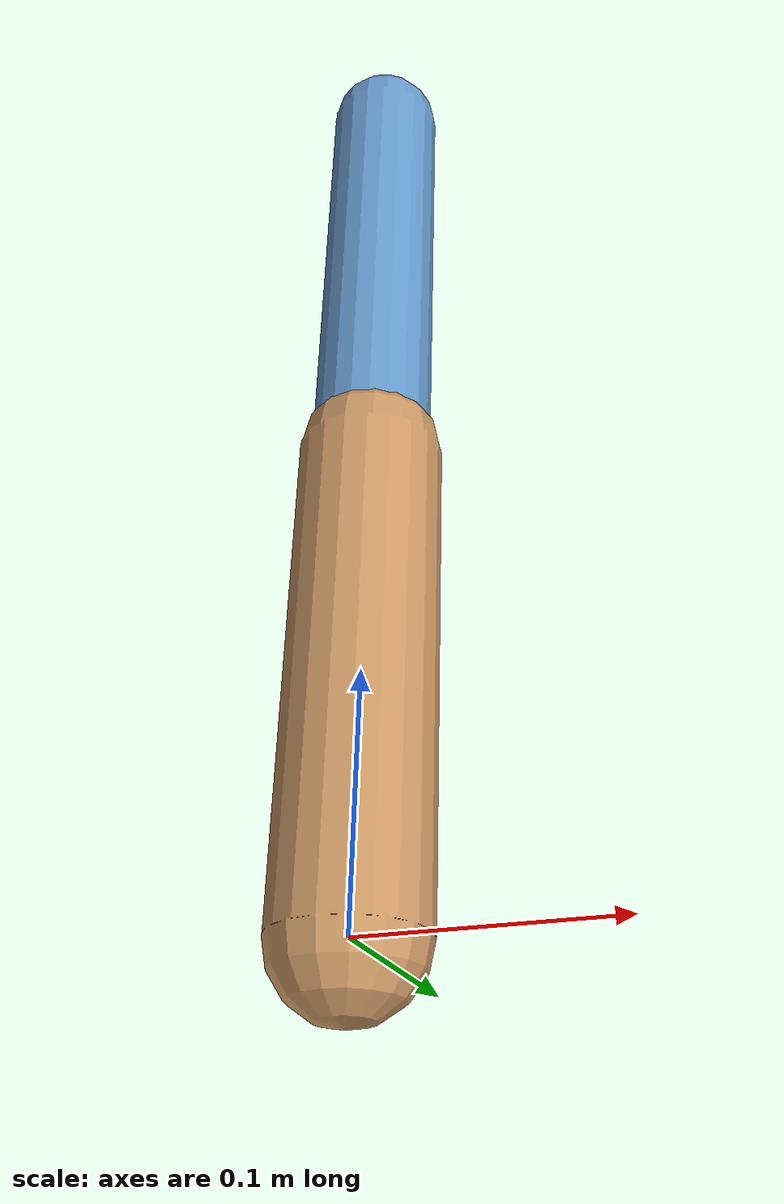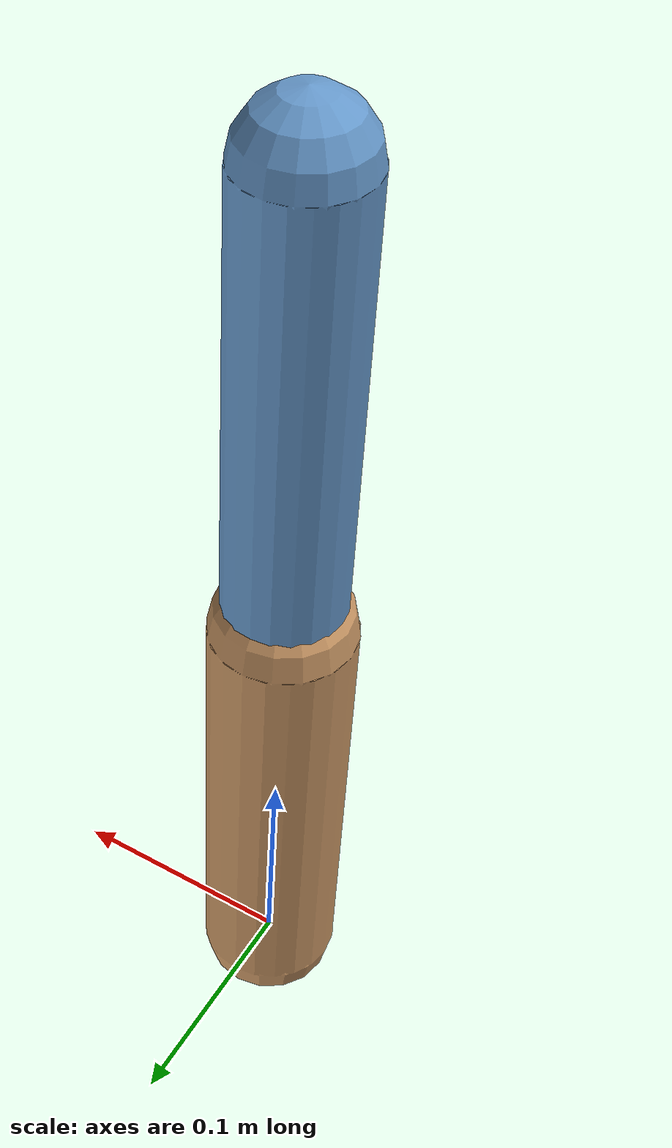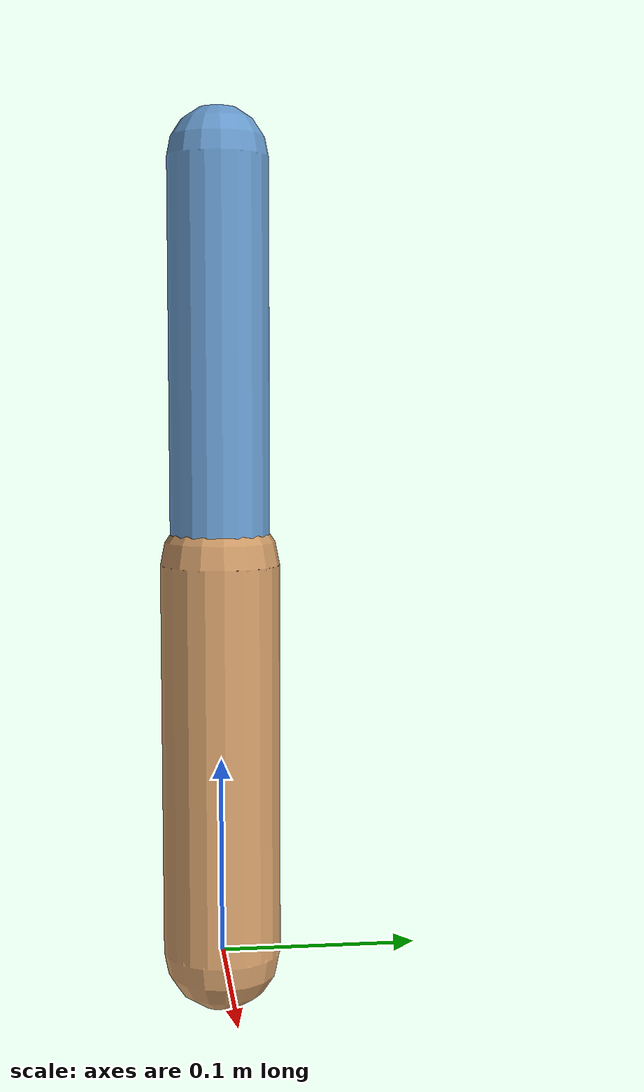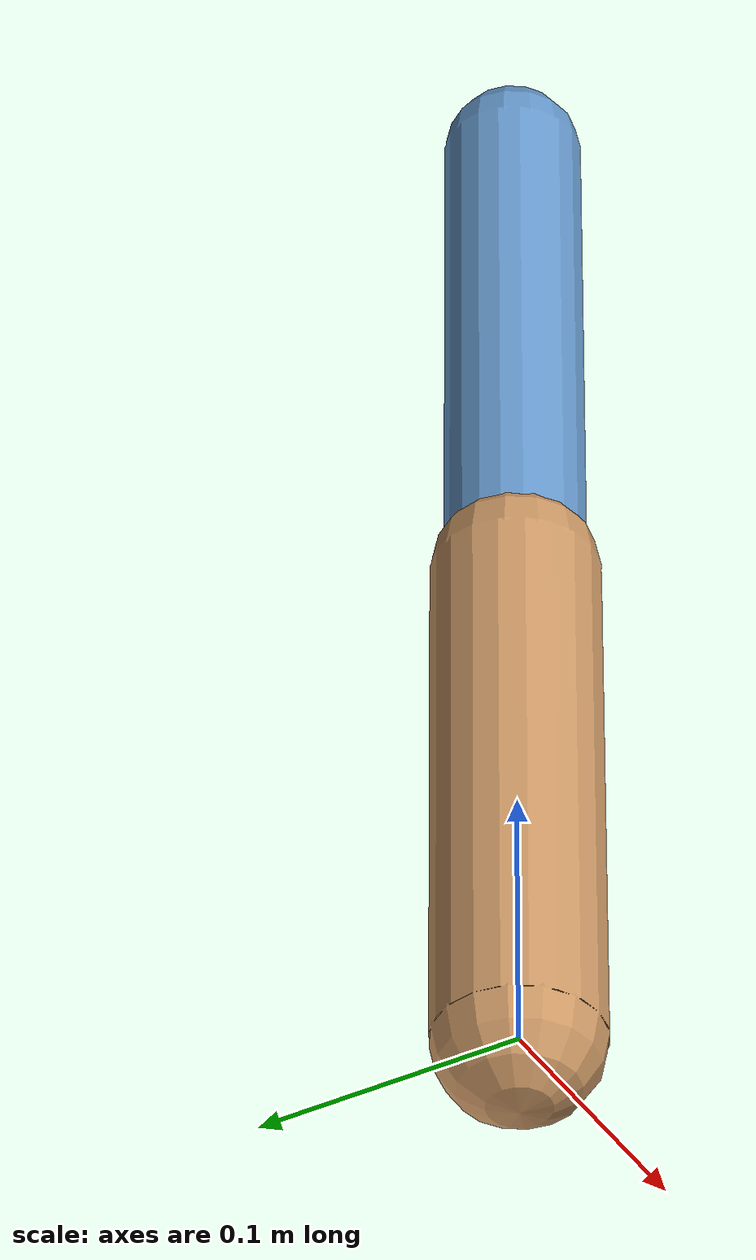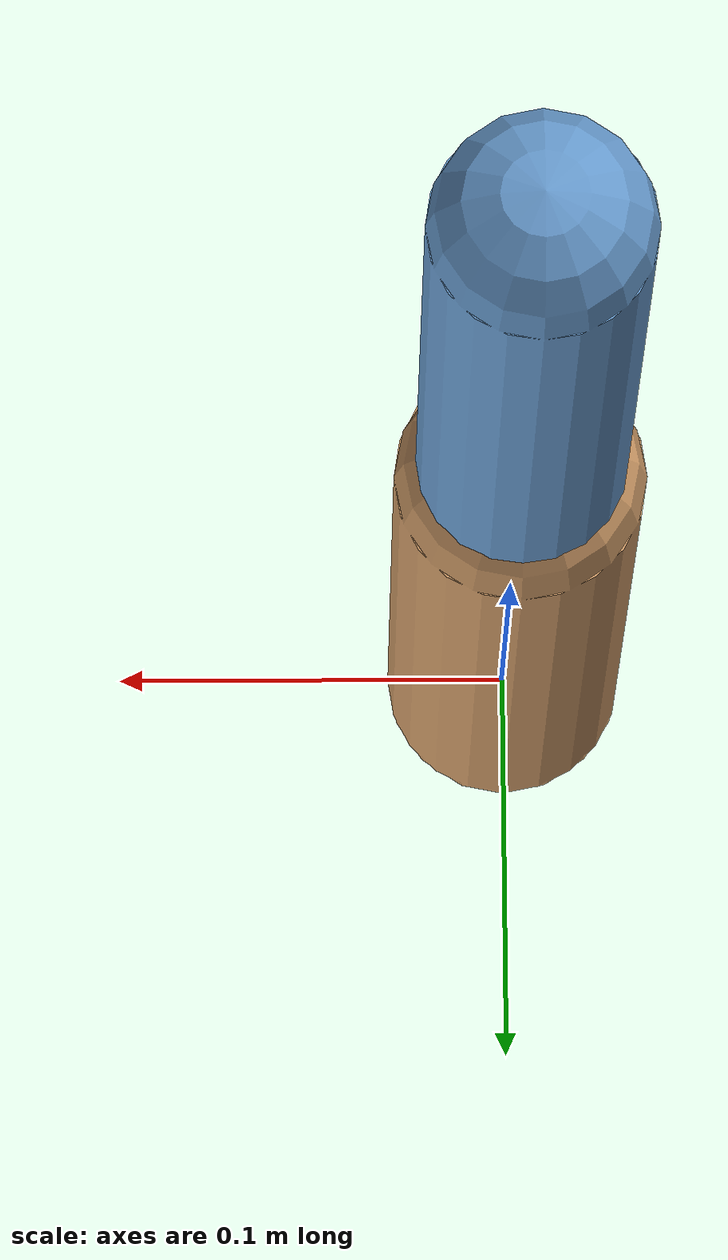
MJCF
<mujoco model="mckibben_example">
  <compiler angle="radian" coordinate="local"/>

  <option gravity="0 0 -9.81"/>

  <worldbody>
    <!-- Upper arm fixed to world -->
    <body name="upper_arm" pos="0 0 0">
      <geom type="capsule" fromto="0 0 0 0 0 0.2" size="0.03" rgba="0.8 0.6 0.4 1"/>
      <site name="bicep_origin" pos="0 0 0.2" size="0.005" rgba="1 0 0 1"/>

      <!-- Forearm connected via elbow joint -->
      <body name="forearm" pos="0 0 0.2">
        <joint name="elbow_flex" type="hinge" pos="0 0 0" axis="0 1 0" range="0 2.0"/>
        <geom type="capsule" fromto="0 0 0 0 0 0.2" size="0.025" rgba="0.4 0.6 0.8 1"/>
        <site name="forearm_insertion" pos="0 0 0.2" size="0.005" rgba="0 1 0 1"/>
      </body>
    </body>
  </worldbody>

  <tendon>
    <spatial name="mckibben_tendon">
      <site site="bicep_origin"/>
      <site site="forearm_insertion"/>
    </spatial>
  </tendon>

  <actuator>
    <muscle name="mckibben_muscle" tendon="mckibben_tendon" range="0 1" force="150" lmin="0.5" lmax="1.5" fpmax="1.0" lengthrange="0.2 0.3"/>
  </actuator>

</mujoco>
